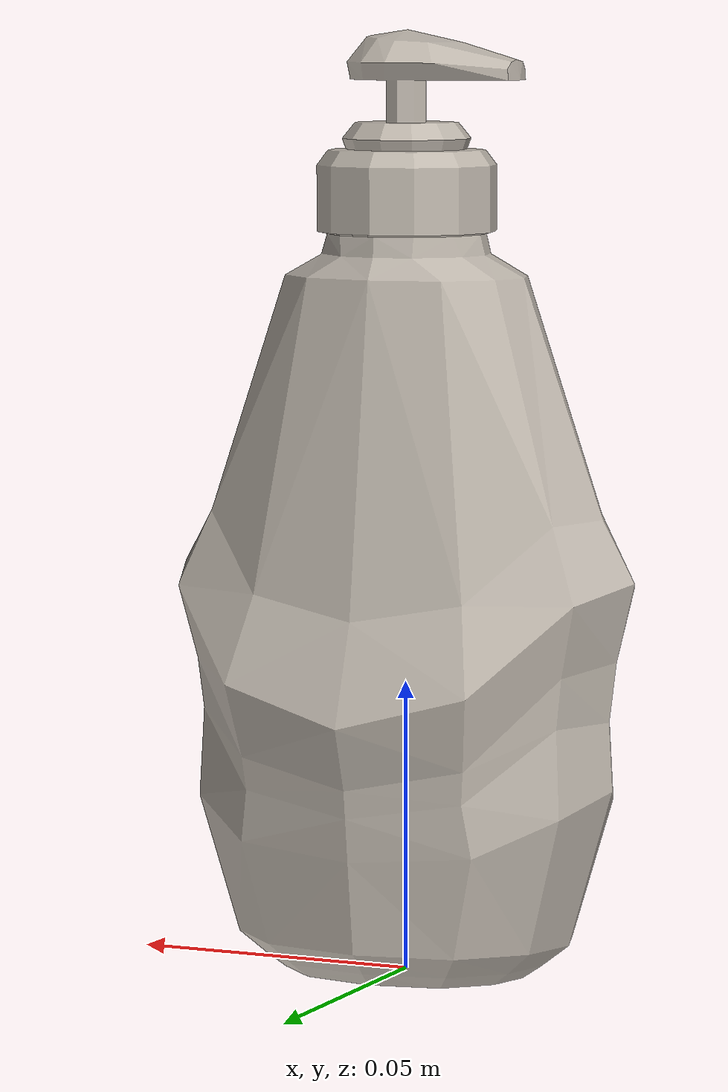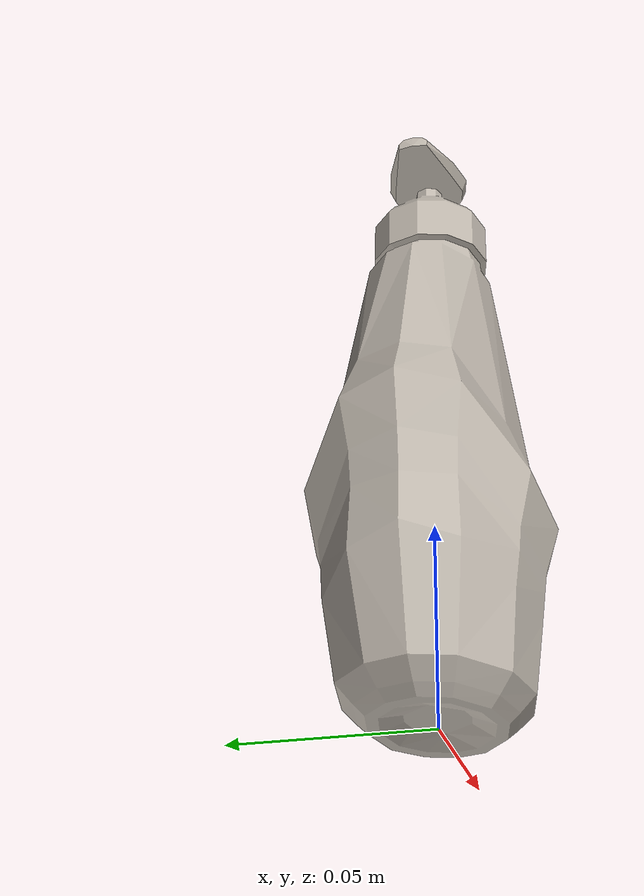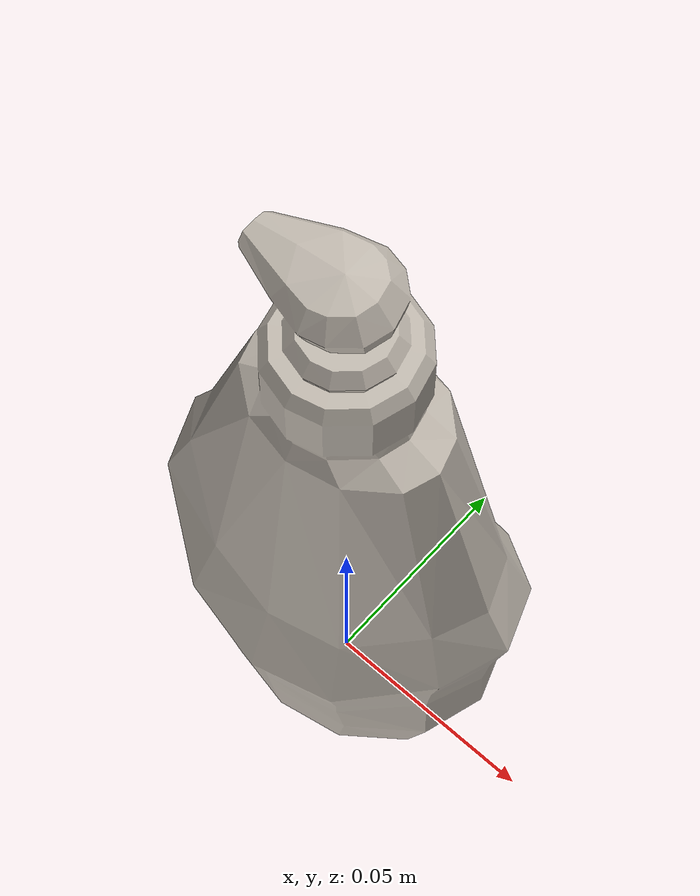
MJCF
<?xml version="1.0" encoding="utf-8"?>
<mujoco model="soap">
  <compiler angle="radian" meshdir="assets" texturedir="assets" autolimits="true"/>
  <asset>
    <mesh file="soap.obj"/>
    <mesh file="soap_collision_001.obj"/>
    <mesh file="soap_collision_002.obj"/>
    <texture type="2d" name="soap" file="soap_basecolor.png"/>
    <material name="soap" specular="0.2" shininess="0.2" texture="soap"/>
  </asset>
  <default>
    <default class="soap">
      <default class="visual">
        <geom type="mesh" mass="0.2" contype="0" conaffinity="0" group="2"/>
      </default>
      <default class="collision">
        <geom type="mesh" mass="0" group="3" solimp="0.998 0.998 0.001" solref="0.004 1"/>
      </default>
      <default class="balance">
        <geom group="3" type="sphere" mass="0.1" size="0.01" pos="0 0 -0.02" contype="0" conaffinity="0"/>
      </default>
    </default>
  </default>
  <worldbody>
    <body name="soap" childclass="soap">
      <geom name="mesh" mesh="soap" class="visual" material="soap" euler="1.5708 0 0"/>
      <geom name="collider_1" mesh="soap_collision_001" class="collision" euler="1.5708 0 0"/>
      <geom name="collider_2" mesh="soap_collision_002" class="collision" euler="1.5708 0 0"/>
      <geom class="balance"/>
    </body>
  </worldbody>
</mujoco>
